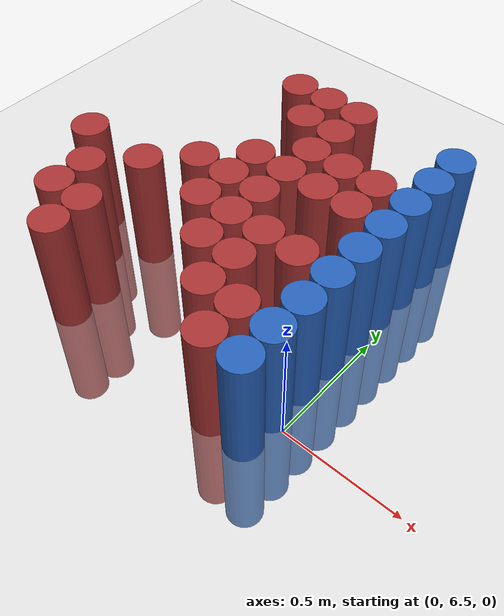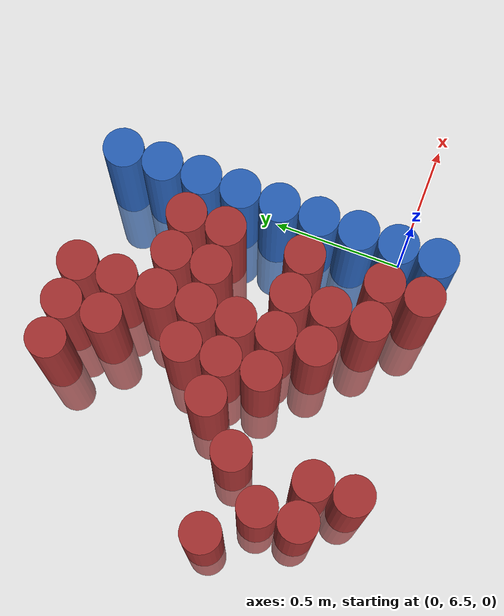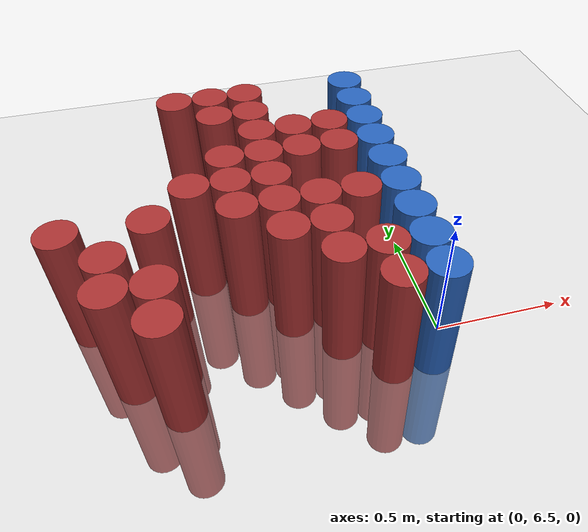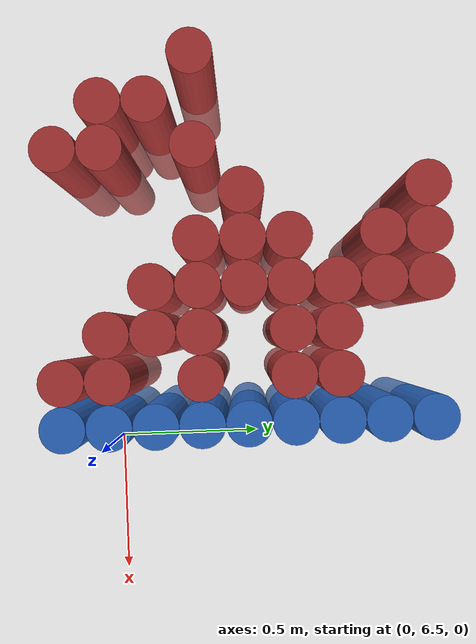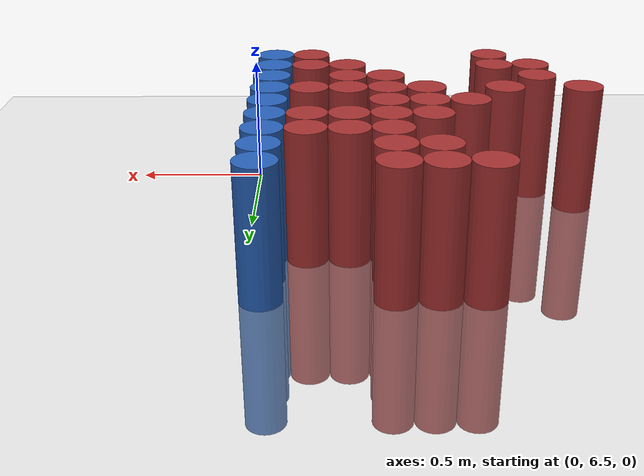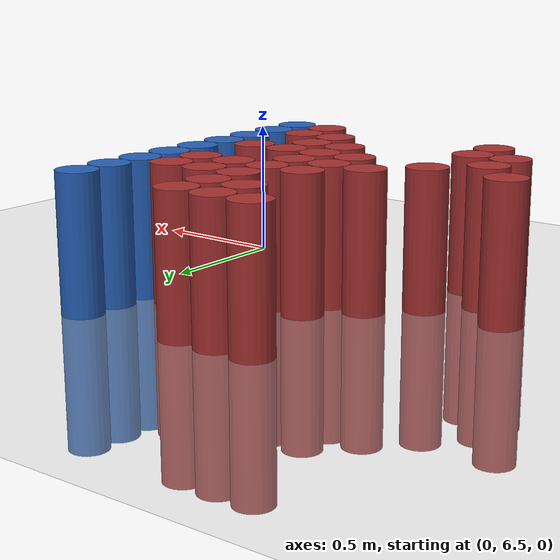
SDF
<sdf version="1.6">
 <world name="default">
  <model name="ground_plane">
   <static>1</static>
   <link name="link">
    <collision name="collision">
     <geometry><plane><normal>0 0 1</normal><size>100 100</size></plane></geometry>
     <surface><friction><ode><mu>100</mu><mu2>50</mu2></ode></friction></surface>
    </collision>
    <visual name="visual">
     <cast_shadows>0</cast_shadows>
     <geometry><plane><normal>0 0 1</normal><size>100 100</size></plane></geometry>
     <material>
      <script><uri>file://media/materials/scripts/gazebo.material</uri><name>Gazebo/Grey</name></script>
     </material>
    </visual>
   </link>
  </model>
  <model name="unit_cylinder_215">
   <static>1</static>
   <pose>-1.275000 6.825000 0.000000 0.000000 0.000000 0.000000</pose>
   <link name="link">
    <inertial>
     <mass>1</mass>
     <inertia><ixx>0.145833</ixx><ixy>0</ixy><ixz>0</ixz><iyy>0.145833</iyy><iyz>0</iyz><izz>0.125</izz></inertia>
    </inertial>
    <collision name="collision">
     <geometry><cylinder><radius>0.075000</radius><length>1</length></cylinder></geometry>
    </collision>
    <visual name="visual">
     <geometry><cylinder><radius>0.075000</radius><length>1</length></cylinder></geometry>
     <material>
      <ambient>0.648000 0.192000 0.192000 1</ambient>
      <diffuse>0.648000 0.192000 0.192000 1</diffuse>
     </material>
     <material>
      <script><name>Gazebo/Grey</name><uri>file://media/materials/scripts/gazebo.material</uri></script>
     </material>
    </visual>
    <sensor name="sensor_contact" type="contact"><contact><collision>collision</collision></contact></sensor>
   </link>
   <plugin filename="gz-sim-touchplugin-system" name="gz::sim::systems::TouchPlugin">
    <target>robot</target>
    <namespace>robot</namespace>
    <time>0.001</time>
    <enabled>true</enabled>
   </plugin>
  </model>
  <model name="unit_cylinder_216">
   <static>1</static>
   <pose>-1.125000 6.525000 0.000000 0.000000 0.000000 0.000000</pose>
   <link name="link">
    <inertial>
     <mass>1</mass>
     <inertia><ixx>0.145833</ixx><ixy>0</ixy><ixz>0</ixz><iyy>0.145833</iyy><iyz>0</iyz><izz>0.125</izz></inertia>
    </inertial>
    <collision name="collision">
     <geometry><cylinder><radius>0.075000</radius><length>1</length></cylinder></geometry>
    </collision>
    <visual name="visual">
     <geometry><cylinder><radius>0.075000</radius><length>1</length></cylinder></geometry>
     <material>
      <ambient>0.648000 0.192000 0.192000 1</ambient>
      <diffuse>0.648000 0.192000 0.192000 1</diffuse>
     </material>
     <material>
      <script><name>Gazebo/Grey</name><uri>file://media/materials/scripts/gazebo.material</uri></script>
     </material>
    </visual>
    <sensor name="sensor_contact" type="contact"><contact><collision>collision</collision></contact></sensor>
   </link>
   <plugin filename="gz-sim-touchplugin-system" name="gz::sim::systems::TouchPlugin">
    <target>robot</target>
    <namespace>robot</namespace>
    <time>0.001</time>
    <enabled>true</enabled>
   </plugin>
  </model>
  <model name="unit_cylinder_217">
   <static>1</static>
   <pose>-1.125000 6.675000 0.000000 0.000000 0.000000 0.000000</pose>
   <link name="link">
    <inertial>
     <mass>1</mass>
     <inertia><ixx>0.145833</ixx><ixy>0</ixy><ixz>0</ixz><iyy>0.145833</iyy><iyz>0</iyz><izz>0.125</izz></inertia>
    </inertial>
    <collision name="collision">
     <geometry><cylinder><radius>0.075000</radius><length>1</length></cylinder></geometry>
    </collision>
    <visual name="visual">
     <geometry><cylinder><radius>0.075000</radius><length>1</length></cylinder></geometry>
     <material>
      <ambient>0.648000 0.192000 0.192000 1</ambient>
      <diffuse>0.648000 0.192000 0.192000 1</diffuse>
     </material>
     <material>
      <script><name>Gazebo/Grey</name><uri>file://media/materials/scripts/gazebo.material</uri></script>
     </material>
    </visual>
    <sensor name="sensor_contact" type="contact"><contact><collision>collision</collision></contact></sensor>
   </link>
   <plugin filename="gz-sim-touchplugin-system" name="gz::sim::systems::TouchPlugin">
    <target>robot</target>
    <namespace>robot</namespace>
    <time>0.001</time>
    <enabled>true</enabled>
   </plugin>
  </model>
  <model name="unit_cylinder_219">
   <static>1</static>
   <pose>-0.975000 6.375000 0.000000 0.000000 0.000000 0.000000</pose>
   <link name="link">
    <inertial>
     <mass>1</mass>
     <inertia><ixx>0.145833</ixx><ixy>0</ixy><ixz>0</ixz><iyy>0.145833</iyy><iyz>0</iyz><izz>0.125</izz></inertia>
    </inertial>
    <collision name="collision">
     <geometry><cylinder><radius>0.075000</radius><length>1</length></cylinder></geometry>
    </collision>
    <visual name="visual">
     <geometry><cylinder><radius>0.075000</radius><length>1</length></cylinder></geometry>
     <material>
      <ambient>0.648000 0.192000 0.192000 1</ambient>
      <diffuse>0.648000 0.192000 0.192000 1</diffuse>
     </material>
     <material>
      <script><name>Gazebo/Grey</name><uri>file://media/materials/scripts/gazebo.material</uri></script>
     </material>
    </visual>
    <sensor name="sensor_contact" type="contact"><contact><collision>collision</collision></contact></sensor>
   </link>
   <plugin filename="gz-sim-touchplugin-system" name="gz::sim::systems::TouchPlugin">
    <target>robot</target>
    <namespace>robot</namespace>
    <time>0.001</time>
    <enabled>true</enabled>
   </plugin>
  </model>
  <model name="unit_cylinder_220">
   <static>1</static>
   <pose>-0.975000 6.525000 0.000000 0.000000 0.000000 0.000000</pose>
   <link name="link">
    <inertial>
     <mass>1</mass>
     <inertia><ixx>0.145833</ixx><ixy>0</ixy><ixz>0</ixz><iyy>0.145833</iyy><iyz>0</iyz><izz>0.125</izz></inertia>
    </inertial>
    <collision name="collision">
     <geometry><cylinder><radius>0.075000</radius><length>1</length></cylinder></geometry>
    </collision>
    <visual name="visual">
     <geometry><cylinder><radius>0.075000</radius><length>1</length></cylinder></geometry>
     <material>
      <ambient>0.648000 0.192000 0.192000 1</ambient>
      <diffuse>0.648000 0.192000 0.192000 1</diffuse>
     </material>
     <material>
      <script><name>Gazebo/Grey</name><uri>file://media/materials/scripts/gazebo.material</uri></script>
     </material>
    </visual>
    <sensor name="sensor_contact" type="contact"><contact><collision>collision</collision></contact></sensor>
   </link>
   <plugin filename="gz-sim-touchplugin-system" name="gz::sim::systems::TouchPlugin">
    <target>robot</target>
    <namespace>robot</namespace>
    <time>0.001</time>
    <enabled>true</enabled>
   </plugin>
  </model>
  <model name="unit_cylinder_221">
   <static>1</static>
   <pose>-0.975000 6.825000 0.000000 0.000000 0.000000 0.000000</pose>
   <link name="link">
    <inertial>
     <mass>1</mass>
     <inertia><ixx>0.145833</ixx><ixy>0</ixy><ixz>0</ixz><iyy>0.145833</iyy><iyz>0</iyz><izz>0.125</izz></inertia>
    </inertial>
    <collision name="collision">
     <geometry><cylinder><radius>0.075000</radius><length>1</length></cylinder></geometry>
    </collision>
    <visual name="visual">
     <geometry><cylinder><radius>0.075000</radius><length>1</length></cylinder></geometry>
     <material>
      <ambient>0.648000 0.192000 0.192000 1</ambient>
      <diffuse>0.648000 0.192000 0.192000 1</diffuse>
     </material>
     <material>
      <script><name>Gazebo/Grey</name><uri>file://media/materials/scripts/gazebo.material</uri></script>
     </material>
    </visual>
    <sensor name="sensor_contact" type="contact"><contact><collision>collision</collision></contact></sensor>
   </link>
   <plugin filename="gz-sim-touchplugin-system" name="gz::sim::systems::TouchPlugin">
    <target>robot</target>
    <namespace>robot</namespace>
    <time>0.001</time>
    <enabled>true</enabled>
   </plugin>
  </model>
  <model name="unit_cylinder_226">
   <static>1</static>
   <pose>-0.825000 6.975000 0.000000 0.000000 0.000000 0.000000</pose>
   <link name="link">
    <inertial>
     <mass>1</mass>
     <inertia><ixx>0.145833</ixx><ixy>0</ixy><ixz>0</ixz><iyy>0.145833</iyy><iyz>0</iyz><izz>0.125</izz></inertia>
    </inertial>
    <collision name="collision">
     <geometry><cylinder><radius>0.075000</radius><length>1</length></cylinder></geometry>
    </collision>
    <visual name="visual">
     <geometry><cylinder><radius>0.075000</radius><length>1</length></cylinder></geometry>
     <material>
      <ambient>0.648000 0.192000 0.192000 1</ambient>
      <diffuse>0.648000 0.192000 0.192000 1</diffuse>
     </material>
     <material>
      <script><name>Gazebo/Grey</name><uri>file://media/materials/scripts/gazebo.material</uri></script>
     </material>
    </visual>
    <sensor name="sensor_contact" type="contact"><contact><collision>collision</collision></contact></sensor>
   </link>
   <plugin filename="gz-sim-touchplugin-system" name="gz::sim::systems::TouchPlugin">
    <target>robot</target>
    <namespace>robot</namespace>
    <time>0.001</time>
    <enabled>true</enabled>
   </plugin>
  </model>
  <model name="unit_cylinder_227">
   <static>1</static>
   <pose>-0.825000 7.575000 0.000000 0.000000 0.000000 0.000000</pose>
   <link name="link">
    <inertial>
     <mass>1</mass>
     <inertia><ixx>0.145833</ixx><ixy>0</ixy><ixz>0</ixz><iyy>0.145833</iyy><iyz>0</iyz><izz>0.125</izz></inertia>
    </inertial>
    <collision name="collision">
     <geometry><cylinder><radius>0.075000</radius><length>1</length></cylinder></geometry>
    </collision>
    <visual name="visual">
     <geometry><cylinder><radius>0.075000</radius><length>1</length></cylinder></geometry>
     <material>
      <ambient>0.648000 0.192000 0.192000 1</ambient>
      <diffuse>0.648000 0.192000 0.192000 1</diffuse>
     </material>
     <material>
      <script><name>Gazebo/Grey</name><uri>file://media/materials/scripts/gazebo.material</uri></script>
     </material>
    </visual>
    <sensor name="sensor_contact" type="contact"><contact><collision>collision</collision></contact></sensor>
   </link>
   <plugin filename="gz-sim-touchplugin-system" name="gz::sim::systems::TouchPlugin">
    <target>robot</target>
    <namespace>robot</namespace>
    <time>0.001</time>
    <enabled>true</enabled>
   </plugin>
  </model>
  <model name="unit_cylinder_234">
   <static>1</static>
   <pose>-0.675000 6.825000 0.000000 0.000000 0.000000 0.000000</pose>
   <link name="link">
    <inertial>
     <mass>1</mass>
     <inertia><ixx>0.145833</ixx><ixy>0</ixy><ixz>0</ixz><iyy>0.145833</iyy><iyz>0</iyz><izz>0.125</izz></inertia>
    </inertial>
    <collision name="collision">
     <geometry><cylinder><radius>0.075000</radius><length>1</length></cylinder></geometry>
    </collision>
    <visual name="visual">
     <geometry><cylinder><radius>0.075000</radius><length>1</length></cylinder></geometry>
     <material>
      <ambient>0.648000 0.192000 0.192000 1</ambient>
      <diffuse>0.648000 0.192000 0.192000 1</diffuse>
     </material>
     <material>
      <script><name>Gazebo/Grey</name><uri>file://media/materials/scripts/gazebo.material</uri></script>
     </material>
    </visual>
    <sensor name="sensor_contact" type="contact"><contact><collision>collision</collision></contact></sensor>
   </link>
   <plugin filename="gz-sim-touchplugin-system" name="gz::sim::systems::TouchPlugin">
    <target>robot</target>
    <namespace>robot</namespace>
    <time>0.001</time>
    <enabled>true</enabled>
   </plugin>
  </model>
  <model name="unit_cylinder_235">
   <static>1</static>
   <pose>-0.675000 6.975000 0.000000 0.000000 0.000000 0.000000</pose>
   <link name="link">
    <inertial>
     <mass>1</mass>
     <inertia><ixx>0.145833</ixx><ixy>0</ixy><ixz>0</ixz><iyy>0.145833</iyy><iyz>0</iyz><izz>0.125</izz></inertia>
    </inertial>
    <collision name="collision">
     <geometry><cylinder><radius>0.075000</radius><length>1</length></cylinder></geometry>
    </collision>
    <visual name="visual">
     <geometry><cylinder><radius>0.075000</radius><length>1</length></cylinder></geometry>
     <material>
      <ambient>0.648000 0.192000 0.192000 1</ambient>
      <diffuse>0.648000 0.192000 0.192000 1</diffuse>
     </material>
     <material>
      <script><name>Gazebo/Grey</name><uri>file://media/materials/scripts/gazebo.material</uri></script>
     </material>
    </visual>
    <sensor name="sensor_contact" type="contact"><contact><collision>collision</collision></contact></sensor>
   </link>
   <plugin filename="gz-sim-touchplugin-system" name="gz::sim::systems::TouchPlugin">
    <target>robot</target>
    <namespace>robot</namespace>
    <time>0.001</time>
    <enabled>true</enabled>
   </plugin>
  </model>
  <model name="unit_cylinder_236">
   <static>1</static>
   <pose>-0.675000 7.125000 0.000000 0.000000 0.000000 0.000000</pose>
   <link name="link">
    <inertial>
     <mass>1</mass>
     <inertia><ixx>0.145833</ixx><ixy>0</ixy><ixz>0</ixz><iyy>0.145833</iyy><iyz>0</iyz><izz>0.125</izz></inertia>
    </inertial>
    <collision name="collision">
     <geometry><cylinder><radius>0.075000</radius><length>1</length></cylinder></geometry>
    </collision>
    <visual name="visual">
     <geometry><cylinder><radius>0.075000</radius><length>1</length></cylinder></geometry>
     <material>
      <ambient>0.648000 0.192000 0.192000 1</ambient>
      <diffuse>0.648000 0.192000 0.192000 1</diffuse>
     </material>
     <material>
      <script><name>Gazebo/Grey</name><uri>file://media/materials/scripts/gazebo.material</uri></script>
     </material>
    </visual>
    <sensor name="sensor_contact" type="contact"><contact><collision>collision</collision></contact></sensor>
   </link>
   <plugin filename="gz-sim-touchplugin-system" name="gz::sim::systems::TouchPlugin">
    <target>robot</target>
    <namespace>robot</namespace>
    <time>0.001</time>
    <enabled>true</enabled>
   </plugin>
  </model>
  <model name="unit_cylinder_237">
   <static>1</static>
   <pose>-0.675000 7.425000 0.000000 0.000000 0.000000 0.000000</pose>
   <link name="link">
    <inertial>
     <mass>1</mass>
     <inertia><ixx>0.145833</ixx><ixy>0</ixy><ixz>0</ixz><iyy>0.145833</iyy><iyz>0</iyz><izz>0.125</izz></inertia>
    </inertial>
    <collision name="collision">
     <geometry><cylinder><radius>0.075000</radius><length>1</length></cylinder></geometry>
    </collision>
    <visual name="visual">
     <geometry><cylinder><radius>0.075000</radius><length>1</length></cylinder></geometry>
     <material>
      <ambient>0.648000 0.192000 0.192000 1</ambient>
      <diffuse>0.648000 0.192000 0.192000 1</diffuse>
     </material>
     <material>
      <script><name>Gazebo/Grey</name><uri>file://media/materials/scripts/gazebo.material</uri></script>
     </material>
    </visual>
    <sensor name="sensor_contact" type="contact"><contact><collision>collision</collision></contact></sensor>
   </link>
   <plugin filename="gz-sim-touchplugin-system" name="gz::sim::systems::TouchPlugin">
    <target>robot</target>
    <namespace>robot</namespace>
    <time>0.001</time>
    <enabled>true</enabled>
   </plugin>
  </model>
  <model name="unit_cylinder_238">
   <static>1</static>
   <pose>-0.675000 7.575000 0.000000 0.000000 0.000000 0.000000</pose>
   <link name="link">
    <inertial>
     <mass>1</mass>
     <inertia><ixx>0.145833</ixx><ixy>0</ixy><ixz>0</ixz><iyy>0.145833</iyy><iyz>0</iyz><izz>0.125</izz></inertia>
    </inertial>
    <collision name="collision">
     <geometry><cylinder><radius>0.075000</radius><length>1</length></cylinder></geometry>
    </collision>
    <visual name="visual">
     <geometry><cylinder><radius>0.075000</radius><length>1</length></cylinder></geometry>
     <material>
      <ambient>0.648000 0.192000 0.192000 1</ambient>
      <diffuse>0.648000 0.192000 0.192000 1</diffuse>
     </material>
     <material>
      <script><name>Gazebo/Grey</name><uri>file://media/materials/scripts/gazebo.material</uri></script>
     </material>
    </visual>
    <sensor name="sensor_contact" type="contact"><contact><collision>collision</collision></contact></sensor>
   </link>
   <plugin filename="gz-sim-touchplugin-system" name="gz::sim::systems::TouchPlugin">
    <target>robot</target>
    <namespace>robot</namespace>
    <time>0.001</time>
    <enabled>true</enabled>
   </plugin>
  </model>
  <model name="unit_cylinder_241">
   <static>1</static>
   <pose>-0.525000 6.675000 0.000000 0.000000 0.000000 0.000000</pose>
   <link name="link">
    <inertial>
     <mass>1</mass>
     <inertia><ixx>0.145833</ixx><ixy>0</ixy><ixz>0</ixz><iyy>0.145833</iyy><iyz>0</iyz><izz>0.125</izz></inertia>
    </inertial>
    <collision name="collision">
     <geometry><cylinder><radius>0.075000</radius><length>1</length></cylinder></geometry>
    </collision>
    <visual name="visual">
     <geometry><cylinder><radius>0.075000</radius><length>1</length></cylinder></geometry>
     <material>
      <ambient>0.648000 0.192000 0.192000 1</ambient>
      <diffuse>0.648000 0.192000 0.192000 1</diffuse>
     </material>
     <material>
      <script><name>Gazebo/Grey</name><uri>file://media/materials/scripts/gazebo.material</uri></script>
     </material>
    </visual>
    <sensor name="sensor_contact" type="contact"><contact><collision>collision</collision></contact></sensor>
   </link>
   <plugin filename="gz-sim-touchplugin-system" name="gz::sim::systems::TouchPlugin">
    <target>robot</target>
    <namespace>robot</namespace>
    <time>0.001</time>
    <enabled>true</enabled>
   </plugin>
  </model>
  <model name="unit_cylinder_242">
   <static>1</static>
   <pose>-0.525000 6.825000 0.000000 0.000000 0.000000 0.000000</pose>
   <link name="link">
    <inertial>
     <mass>1</mass>
     <inertia><ixx>0.145833</ixx><ixy>0</ixy><ixz>0</ixz><iyy>0.145833</iyy><iyz>0</iyz><izz>0.125</izz></inertia>
    </inertial>
    <collision name="collision">
     <geometry><cylinder><radius>0.075000</radius><length>1</length></cylinder></geometry>
    </collision>
    <visual name="visual">
     <geometry><cylinder><radius>0.075000</radius><length>1</length></cylinder></geometry>
     <material>
      <ambient>0.648000 0.192000 0.192000 1</ambient>
      <diffuse>0.648000 0.192000 0.192000 1</diffuse>
     </material>
     <material>
      <script><name>Gazebo/Grey</name><uri>file://media/materials/scripts/gazebo.material</uri></script>
     </material>
    </visual>
    <sensor name="sensor_contact" type="contact"><contact><collision>collision</collision></contact></sensor>
   </link>
   <plugin filename="gz-sim-touchplugin-system" name="gz::sim::systems::TouchPlugin">
    <target>robot</target>
    <namespace>robot</namespace>
    <time>0.001</time>
    <enabled>true</enabled>
   </plugin>
  </model>
  <model name="unit_cylinder_243">
   <static>1</static>
   <pose>-0.525000 6.975000 0.000000 0.000000 0.000000 0.000000</pose>
   <link name="link">
    <inertial>
     <mass>1</mass>
     <inertia><ixx>0.145833</ixx><ixy>0</ixy><ixz>0</ixz><iyy>0.145833</iyy><iyz>0</iyz><izz>0.125</izz></inertia>
    </inertial>
    <collision name="collision">
     <geometry><cylinder><radius>0.075000</radius><length>1</length></cylinder></geometry>
    </collision>
    <visual name="visual">
     <geometry><cylinder><radius>0.075000</radius><length>1</length></cylinder></geometry>
     <material>
      <ambient>0.648000 0.192000 0.192000 1</ambient>
      <diffuse>0.648000 0.192000 0.192000 1</diffuse>
     </material>
     <material>
      <script><name>Gazebo/Grey</name><uri>file://media/materials/scripts/gazebo.material</uri></script>
     </material>
    </visual>
    <sensor name="sensor_contact" type="contact"><contact><collision>collision</collision></contact></sensor>
   </link>
   <plugin filename="gz-sim-touchplugin-system" name="gz::sim::systems::TouchPlugin">
    <target>robot</target>
    <namespace>robot</namespace>
    <time>0.001</time>
    <enabled>true</enabled>
   </plugin>
  </model>
  <model name="unit_cylinder_244">
   <static>1</static>
   <pose>-0.525000 7.125000 0.000000 0.000000 0.000000 0.000000</pose>
   <link name="link">
    <inertial>
     <mass>1</mass>
     <inertia><ixx>0.145833</ixx><ixy>0</ixy><ixz>0</ixz><iyy>0.145833</iyy><iyz>0</iyz><izz>0.125</izz></inertia>
    </inertial>
    <collision name="collision">
     <geometry><cylinder><radius>0.075000</radius><length>1</length></cylinder></geometry>
    </collision>
    <visual name="visual">
     <geometry><cylinder><radius>0.075000</radius><length>1</length></cylinder></geometry>
     <material>
      <ambient>0.648000 0.192000 0.192000 1</ambient>
      <diffuse>0.648000 0.192000 0.192000 1</diffuse>
     </material>
     <material>
      <script><name>Gazebo/Grey</name><uri>file://media/materials/scripts/gazebo.material</uri></script>
     </material>
    </visual>
    <sensor name="sensor_contact" type="contact"><contact><collision>collision</collision></contact></sensor>
   </link>
   <plugin filename="gz-sim-touchplugin-system" name="gz::sim::systems::TouchPlugin">
    <target>robot</target>
    <namespace>robot</namespace>
    <time>0.001</time>
    <enabled>true</enabled>
   </plugin>
  </model>
  <model name="unit_cylinder_245">
   <static>1</static>
   <pose>-0.525000 7.275000 0.000000 0.000000 0.000000 0.000000</pose>
   <link name="link">
    <inertial>
     <mass>1</mass>
     <inertia><ixx>0.145833</ixx><ixy>0</ixy><ixz>0</ixz><iyy>0.145833</iyy><iyz>0</iyz><izz>0.125</izz></inertia>
    </inertial>
    <collision name="collision">
     <geometry><cylinder><radius>0.075000</radius><length>1</length></cylinder></geometry>
    </collision>
    <visual name="visual">
     <geometry><cylinder><radius>0.075000</radius><length>1</length></cylinder></geometry>
     <material>
      <ambient>0.648000 0.192000 0.192000 1</ambient>
      <diffuse>0.648000 0.192000 0.192000 1</diffuse>
     </material>
     <material>
      <script><name>Gazebo/Grey</name><uri>file://media/materials/scripts/gazebo.material</uri></script>
     </material>
    </visual>
    <sensor name="sensor_contact" type="contact"><contact><collision>collision</collision></contact></sensor>
   </link>
   <plugin filename="gz-sim-touchplugin-system" name="gz::sim::systems::TouchPlugin">
    <target>robot</target>
    <namespace>robot</namespace>
    <time>0.001</time>
    <enabled>true</enabled>
   </plugin>
  </model>
  <model name="unit_cylinder_246">
   <static>1</static>
   <pose>-0.525000 7.425000 0.000000 0.000000 0.000000 0.000000</pose>
   <link name="link">
    <inertial>
     <mass>1</mass>
     <inertia><ixx>0.145833</ixx><ixy>0</ixy><ixz>0</ixz><iyy>0.145833</iyy><iyz>0</iyz><izz>0.125</izz></inertia>
    </inertial>
    <collision name="collision">
     <geometry><cylinder><radius>0.075000</radius><length>1</length></cylinder></geometry>
    </collision>
    <visual name="visual">
     <geometry><cylinder><radius>0.075000</radius><length>1</length></cylinder></geometry>
     <material>
      <ambient>0.648000 0.192000 0.192000 1</ambient>
      <diffuse>0.648000 0.192000 0.192000 1</diffuse>
     </material>
     <material>
      <script><name>Gazebo/Grey</name><uri>file://media/materials/scripts/gazebo.material</uri></script>
     </material>
    </visual>
    <sensor name="sensor_contact" type="contact"><contact><collision>collision</collision></contact></sensor>
   </link>
   <plugin filename="gz-sim-touchplugin-system" name="gz::sim::systems::TouchPlugin">
    <target>robot</target>
    <namespace>robot</namespace>
    <time>0.001</time>
    <enabled>true</enabled>
   </plugin>
  </model>
  <model name="unit_cylinder_247">
   <static>1</static>
   <pose>-0.525000 7.575000 0.000000 0.000000 0.000000 0.000000</pose>
   <link name="link">
    <inertial>
     <mass>1</mass>
     <inertia><ixx>0.145833</ixx><ixy>0</ixy><ixz>0</ixz><iyy>0.145833</iyy><iyz>0</iyz><izz>0.125</izz></inertia>
    </inertial>
    <collision name="collision">
     <geometry><cylinder><radius>0.075000</radius><length>1</length></cylinder></geometry>
    </collision>
    <visual name="visual">
     <geometry><cylinder><radius>0.075000</radius><length>1</length></cylinder></geometry>
     <material>
      <ambient>0.648000 0.192000 0.192000 1</ambient>
      <diffuse>0.648000 0.192000 0.192000 1</diffuse>
     </material>
     <material>
      <script><name>Gazebo/Grey</name><uri>file://media/materials/scripts/gazebo.material</uri></script>
     </material>
    </visual>
    <sensor name="sensor_contact" type="contact"><contact><collision>collision</collision></contact></sensor>
   </link>
   <plugin filename="gz-sim-touchplugin-system" name="gz::sim::systems::TouchPlugin">
    <target>robot</target>
    <namespace>robot</namespace>
    <time>0.001</time>
    <enabled>true</enabled>
   </plugin>
  </model>
  <model name="unit_cylinder_251">
   <static>1</static>
   <pose>-0.375000 6.525000 0.000000 0.000000 0.000000 0.000000</pose>
   <link name="link">
    <inertial>
     <mass>1</mass>
     <inertia><ixx>0.145833</ixx><ixy>0</ixy><ixz>0</ixz><iyy>0.145833</iyy><iyz>0</iyz><izz>0.125</izz></inertia>
    </inertial>
    <collision name="collision">
     <geometry><cylinder><radius>0.075000</radius><length>1</length></cylinder></geometry>
    </collision>
    <visual name="visual">
     <geometry><cylinder><radius>0.075000</radius><length>1</length></cylinder></geometry>
     <material>
      <ambient>0.648000 0.192000 0.192000 1</ambient>
      <diffuse>0.648000 0.192000 0.192000 1</diffuse>
     </material>
     <material>
      <script><name>Gazebo/Grey</name><uri>file://media/materials/scripts/gazebo.material</uri></script>
     </material>
    </visual>
    <sensor name="sensor_contact" type="contact"><contact><collision>collision</collision></contact></sensor>
   </link>
   <plugin filename="gz-sim-touchplugin-system" name="gz::sim::systems::TouchPlugin">
    <target>robot</target>
    <namespace>robot</namespace>
    <time>0.001</time>
    <enabled>true</enabled>
   </plugin>
  </model>
  <model name="unit_cylinder_252">
   <static>1</static>
   <pose>-0.375000 6.675000 0.000000 0.000000 0.000000 0.000000</pose>
   <link name="link">
    <inertial>
     <mass>1</mass>
     <inertia><ixx>0.145833</ixx><ixy>0</ixy><ixz>0</ixz><iyy>0.145833</iyy><iyz>0</iyz><izz>0.125</izz></inertia>
    </inertial>
    <collision name="collision">
     <geometry><cylinder><radius>0.075000</radius><length>1</length></cylinder></geometry>
    </collision>
    <visual name="visual">
     <geometry><cylinder><radius>0.075000</radius><length>1</length></cylinder></geometry>
     <material>
      <ambient>0.648000 0.192000 0.192000 1</ambient>
      <diffuse>0.648000 0.192000 0.192000 1</diffuse>
     </material>
     <material>
      <script><name>Gazebo/Grey</name><uri>file://media/materials/scripts/gazebo.material</uri></script>
     </material>
    </visual>
    <sensor name="sensor_contact" type="contact"><contact><collision>collision</collision></contact></sensor>
   </link>
   <plugin filename="gz-sim-touchplugin-system" name="gz::sim::systems::TouchPlugin">
    <target>robot</target>
    <namespace>robot</namespace>
    <time>0.001</time>
    <enabled>true</enabled>
   </plugin>
  </model>
  <model name="unit_cylinder_253">
   <static>1</static>
   <pose>-0.375000 6.825000 0.000000 0.000000 0.000000 0.000000</pose>
   <link name="link">
    <inertial>
     <mass>1</mass>
     <inertia><ixx>0.145833</ixx><ixy>0</ixy><ixz>0</ixz><iyy>0.145833</iyy><iyz>0</iyz><izz>0.125</izz></inertia>
    </inertial>
    <collision name="collision">
     <geometry><cylinder><radius>0.075000</radius><length>1</length></cylinder></geometry>
    </collision>
    <visual name="visual">
     <geometry><cylinder><radius>0.075000</radius><length>1</length></cylinder></geometry>
     <material>
      <ambient>0.648000 0.192000 0.192000 1</ambient>
      <diffuse>0.648000 0.192000 0.192000 1</diffuse>
     </material>
     <material>
      <script><name>Gazebo/Grey</name><uri>file://media/materials/scripts/gazebo.material</uri></script>
     </material>
    </visual>
    <sensor name="sensor_contact" type="contact"><contact><collision>collision</collision></contact></sensor>
   </link>
   <plugin filename="gz-sim-touchplugin-system" name="gz::sim::systems::TouchPlugin">
    <target>robot</target>
    <namespace>robot</namespace>
    <time>0.001</time>
    <enabled>true</enabled>
   </plugin>
  </model>
  <model name="unit_cylinder_254">
   <static>1</static>
   <pose>-0.375000 7.125000 0.000000 0.000000 0.000000 0.000000</pose>
   <link name="link">
    <inertial>
     <mass>1</mass>
     <inertia><ixx>0.145833</ixx><ixy>0</ixy><ixz>0</ixz><iyy>0.145833</iyy><iyz>0</iyz><izz>0.125</izz></inertia>
    </inertial>
    <collision name="collision">
     <geometry><cylinder><radius>0.075000</radius><length>1</length></cylinder></geometry>
    </collision>
    <visual name="visual">
     <geometry><cylinder><radius>0.075000</radius><length>1</length></cylinder></geometry>
     <material>
      <ambient>0.648000 0.192000 0.192000 1</ambient>
      <diffuse>0.648000 0.192000 0.192000 1</diffuse>
     </material>
     <material>
      <script><name>Gazebo/Grey</name><uri>file://media/materials/scripts/gazebo.material</uri></script>
     </material>
    </visual>
    <sensor name="sensor_contact" type="contact"><contact><collision>collision</collision></contact></sensor>
   </link>
   <plugin filename="gz-sim-touchplugin-system" name="gz::sim::systems::TouchPlugin">
    <target>robot</target>
    <namespace>robot</namespace>
    <time>0.001</time>
    <enabled>true</enabled>
   </plugin>
  </model>
  <model name="unit_cylinder_255">
   <static>1</static>
   <pose>-0.375000 7.275000 0.000000 0.000000 0.000000 0.000000</pose>
   <link name="link">
    <inertial>
     <mass>1</mass>
     <inertia><ixx>0.145833</ixx><ixy>0</ixy><ixz>0</ixz><iyy>0.145833</iyy><iyz>0</iyz><izz>0.125</izz></inertia>
    </inertial>
    <collision name="collision">
     <geometry><cylinder><radius>0.075000</radius><length>1</length></cylinder></geometry>
    </collision>
    <visual name="visual">
     <geometry><cylinder><radius>0.075000</radius><length>1</length></cylinder></geometry>
     <material>
      <ambient>0.648000 0.192000 0.192000 1</ambient>
      <diffuse>0.648000 0.192000 0.192000 1</diffuse>
     </material>
     <material>
      <script><name>Gazebo/Grey</name><uri>file://media/materials/scripts/gazebo.material</uri></script>
     </material>
    </visual>
    <sensor name="sensor_contact" type="contact"><contact><collision>collision</collision></contact></sensor>
   </link>
   <plugin filename="gz-sim-touchplugin-system" name="gz::sim::systems::TouchPlugin">
    <target>robot</target>
    <namespace>robot</namespace>
    <time>0.001</time>
    <enabled>true</enabled>
   </plugin>
  </model>
  <model name="unit_cylinder_264">
   <static>1</static>
   <pose>-0.225000 6.375000 0.000000 0.000000 0.000000 0.000000</pose>
   <link name="link">
    <inertial>
     <mass>1</mass>
     <inertia><ixx>0.145833</ixx><ixy>0</ixy><ixz>0</ixz><iyy>0.145833</iyy><iyz>0</iyz><izz>0.125</izz></inertia>
    </inertial>
    <collision name="collision">
     <geometry><cylinder><radius>0.075000</radius><length>1</length></cylinder></geometry>
    </collision>
    <visual name="visual">
     <geometry><cylinder><radius>0.075000</radius><length>1</length></cylinder></geometry>
     <material>
      <ambient>0.648000 0.192000 0.192000 1</ambient>
      <diffuse>0.648000 0.192000 0.192000 1</diffuse>
     </material>
     <material>
      <script><name>Gazebo/Grey</name><uri>file://media/materials/scripts/gazebo.material</uri></script>
     </material>
    </visual>
    <sensor name="sensor_contact" type="contact"><contact><collision>collision</collision></contact></sensor>
   </link>
   <plugin filename="gz-sim-touchplugin-system" name="gz::sim::systems::TouchPlugin">
    <target>robot</target>
    <namespace>robot</namespace>
    <time>0.001</time>
    <enabled>true</enabled>
   </plugin>
  </model>
  <model name="unit_cylinder_265">
   <static>1</static>
   <pose>-0.225000 6.525000 0.000000 0.000000 0.000000 0.000000</pose>
   <link name="link">
    <inertial>
     <mass>1</mass>
     <inertia><ixx>0.145833</ixx><ixy>0</ixy><ixz>0</ixz><iyy>0.145833</iyy><iyz>0</iyz><izz>0.125</izz></inertia>
    </inertial>
    <collision name="collision">
     <geometry><cylinder><radius>0.075000</radius><length>1</length></cylinder></geometry>
    </collision>
    <visual name="visual">
     <geometry><cylinder><radius>0.075000</radius><length>1</length></cylinder></geometry>
     <material>
      <ambient>0.648000 0.192000 0.192000 1</ambient>
      <diffuse>0.648000 0.192000 0.192000 1</diffuse>
     </material>
     <material>
      <script><name>Gazebo/Grey</name><uri>file://media/materials/scripts/gazebo.material</uri></script>
     </material>
    </visual>
    <sensor name="sensor_contact" type="contact"><contact><collision>collision</collision></contact></sensor>
   </link>
   <plugin filename="gz-sim-touchplugin-system" name="gz::sim::systems::TouchPlugin">
    <target>robot</target>
    <namespace>robot</namespace>
    <time>0.001</time>
    <enabled>true</enabled>
   </plugin>
  </model>
  <model name="unit_cylinder_266">
   <static>1</static>
   <pose>-0.225000 6.825000 0.000000 0.000000 0.000000 0.000000</pose>
   <link name="link">
    <inertial>
     <mass>1</mass>
     <inertia><ixx>0.145833</ixx><ixy>0</ixy><ixz>0</ixz><iyy>0.145833</iyy><iyz>0</iyz><izz>0.125</izz></inertia>
    </inertial>
    <collision name="collision">
     <geometry><cylinder><radius>0.075000</radius><length>1</length></cylinder></geometry>
    </collision>
    <visual name="visual">
     <geometry><cylinder><radius>0.075000</radius><length>1</length></cylinder></geometry>
     <material>
      <ambient>0.648000 0.192000 0.192000 1</ambient>
      <diffuse>0.648000 0.192000 0.192000 1</diffuse>
     </material>
     <material>
      <script><name>Gazebo/Grey</name><uri>file://media/materials/scripts/gazebo.material</uri></script>
     </material>
    </visual>
    <sensor name="sensor_contact" type="contact"><contact><collision>collision</collision></contact></sensor>
   </link>
   <plugin filename="gz-sim-touchplugin-system" name="gz::sim::systems::TouchPlugin">
    <target>robot</target>
    <namespace>robot</namespace>
    <time>0.001</time>
    <enabled>true</enabled>
   </plugin>
  </model>
  <model name="unit_cylinder_267">
   <static>1</static>
   <pose>-0.225000 7.125000 0.000000 0.000000 0.000000 0.000000</pose>
   <link name="link">
    <inertial>
     <mass>1</mass>
     <inertia><ixx>0.145833</ixx><ixy>0</ixy><ixz>0</ixz><iyy>0.145833</iyy><iyz>0</iyz><izz>0.125</izz></inertia>
    </inertial>
    <collision name="collision">
     <geometry><cylinder><radius>0.075000</radius><length>1</length></cylinder></geometry>
    </collision>
    <visual name="visual">
     <geometry><cylinder><radius>0.075000</radius><length>1</length></cylinder></geometry>
     <material>
      <ambient>0.648000 0.192000 0.192000 1</ambient>
      <diffuse>0.648000 0.192000 0.192000 1</diffuse>
     </material>
     <material>
      <script><name>Gazebo/Grey</name><uri>file://media/materials/scripts/gazebo.material</uri></script>
     </material>
    </visual>
    <sensor name="sensor_contact" type="contact"><contact><collision>collision</collision></contact></sensor>
   </link>
   <plugin filename="gz-sim-touchplugin-system" name="gz::sim::systems::TouchPlugin">
    <target>robot</target>
    <namespace>robot</namespace>
    <time>0.001</time>
    <enabled>true</enabled>
   </plugin>
  </model>
  <model name="unit_cylinder_268">
   <static>1</static>
   <pose>-0.225000 7.275000 0.000000 0.000000 0.000000 0.000000</pose>
   <link name="link">
    <inertial>
     <mass>1</mass>
     <inertia><ixx>0.145833</ixx><ixy>0</ixy><ixz>0</ixz><iyy>0.145833</iyy><iyz>0</iyz><izz>0.125</izz></inertia>
    </inertial>
    <collision name="collision">
     <geometry><cylinder><radius>0.075000</radius><length>1</length></cylinder></geometry>
    </collision>
    <visual name="visual">
     <geometry><cylinder><radius>0.075000</radius><length>1</length></cylinder></geometry>
     <material>
      <ambient>0.648000 0.192000 0.192000 1</ambient>
      <diffuse>0.648000 0.192000 0.192000 1</diffuse>
     </material>
     <material>
      <script><name>Gazebo/Grey</name><uri>file://media/materials/scripts/gazebo.material</uri></script>
     </material>
    </visual>
    <sensor name="sensor_contact" type="contact"><contact><collision>collision</collision></contact></sensor>
   </link>
   <plugin filename="gz-sim-touchplugin-system" name="gz::sim::systems::TouchPlugin">
    <target>robot</target>
    <namespace>robot</namespace>
    <time>0.001</time>
    <enabled>true</enabled>
   </plugin>
  </model>
  <model name="unit_cylinder_288">
   <static>1</static>
   <pose>-0.075000 6.375000 0.000000 0.000000 0.000000 0.000000</pose>
   <link name="link">
    <inertial>
     <mass>1</mass>
     <inertia><ixx>0.145833</ixx><ixy>0</ixy><ixz>0</ixz><iyy>0.145833</iyy><iyz>0</iyz><izz>0.125</izz></inertia>
    </inertial>
    <collision name="collision">
     <geometry><cylinder><radius>0.075000</radius><length>1</length></cylinder></geometry>
    </collision>
    <visual name="visual">
     <geometry><cylinder><radius>0.075000</radius><length>1</length></cylinder></geometry>
     <material>
      <ambient>0.152000 0.379000 0.720000 1</ambient>
      <diffuse>0.152000 0.379000 0.720000 1</diffuse>
     </material>
     <material>
      <script><name>Gazebo/Grey</name><uri>file://media/materials/scripts/gazebo.material</uri></script>
     </material>
    </visual>
    <sensor name="sensor_contact" type="contact"><contact><collision>collision</collision></contact></sensor>
   </link>
   <plugin filename="gz-sim-touchplugin-system" name="gz::sim::systems::TouchPlugin">
    <target>robot</target>
    <namespace>robot</namespace>
    <time>0.001</time>
    <enabled>true</enabled>
   </plugin>
  </model>
  <model name="unit_cylinder_289">
   <static>1</static>
   <pose>-0.075000 6.525000 0.000000 0.000000 0.000000 0.000000</pose>
   <link name="link">
    <inertial>
     <mass>1</mass>
     <inertia><ixx>0.145833</ixx><ixy>0</ixy><ixz>0</ixz><iyy>0.145833</iyy><iyz>0</iyz><izz>0.125</izz></inertia>
    </inertial>
    <collision name="collision">
     <geometry><cylinder><radius>0.075000</radius><length>1</length></cylinder></geometry>
    </collision>
    <visual name="visual">
     <geometry><cylinder><radius>0.075000</radius><length>1</length></cylinder></geometry>
     <material>
      <ambient>0.152000 0.379000 0.720000 1</ambient>
      <diffuse>0.152000 0.379000 0.720000 1</diffuse>
     </material>
     <material>
      <script><name>Gazebo/Grey</name><uri>file://media/materials/scripts/gazebo.material</uri></script>
     </material>
    </visual>
    <sensor name="sensor_contact" type="contact"><contact><collision>collision</collision></contact></sensor>
   </link>
   <plugin filename="gz-sim-touchplugin-system" name="gz::sim::systems::TouchPlugin">
    <target>robot</target>
    <namespace>robot</namespace>
    <time>0.001</time>
    <enabled>true</enabled>
   </plugin>
  </model>
  <model name="unit_cylinder_290">
   <static>1</static>
   <pose>-0.075000 6.675000 0.000000 0.000000 0.000000 0.000000</pose>
   <link name="link">
    <inertial>
     <mass>1</mass>
     <inertia><ixx>0.145833</ixx><ixy>0</ixy><ixz>0</ixz><iyy>0.145833</iyy><iyz>0</iyz><izz>0.125</izz></inertia>
    </inertial>
    <collision name="collision">
     <geometry><cylinder><radius>0.075000</radius><length>1</length></cylinder></geometry>
    </collision>
    <visual name="visual">
     <geometry><cylinder><radius>0.075000</radius><length>1</length></cylinder></geometry>
     <material>
      <ambient>0.152000 0.379000 0.720000 1</ambient>
      <diffuse>0.152000 0.379000 0.720000 1</diffuse>
     </material>
     <material>
      <script><name>Gazebo/Grey</name><uri>file://media/materials/scripts/gazebo.material</uri></script>
     </material>
    </visual>
    <sensor name="sensor_contact" type="contact"><contact><collision>collision</collision></contact></sensor>
   </link>
   <plugin filename="gz-sim-touchplugin-system" name="gz::sim::systems::TouchPlugin">
    <target>robot</target>
    <namespace>robot</namespace>
    <time>0.001</time>
    <enabled>true</enabled>
   </plugin>
  </model>
  <model name="unit_cylinder_291">
   <static>1</static>
   <pose>-0.075000 6.825000 0.000000 0.000000 0.000000 0.000000</pose>
   <link name="link">
    <inertial>
     <mass>1</mass>
     <inertia><ixx>0.145833</ixx><ixy>0</ixy><ixz>0</ixz><iyy>0.145833</iyy><iyz>0</iyz><izz>0.125</izz></inertia>
    </inertial>
    <collision name="collision">
     <geometry><cylinder><radius>0.075000</radius><length>1</length></cylinder></geometry>
    </collision>
    <visual name="visual">
     <geometry><cylinder><radius>0.075000</radius><length>1</length></cylinder></geometry>
     <material>
      <ambient>0.152000 0.379000 0.720000 1</ambient>
      <diffuse>0.152000 0.379000 0.720000 1</diffuse>
     </material>
     <material>
      <script><name>Gazebo/Grey</name><uri>file://media/materials/scripts/gazebo.material</uri></script>
     </material>
    </visual>
    <sensor name="sensor_contact" type="contact"><contact><collision>collision</collision></contact></sensor>
   </link>
   <plugin filename="gz-sim-touchplugin-system" name="gz::sim::systems::TouchPlugin">
    <target>robot</target>
    <namespace>robot</namespace>
    <time>0.001</time>
    <enabled>true</enabled>
   </plugin>
  </model>
  <model name="unit_cylinder_292">
   <static>1</static>
   <pose>-0.075000 6.975000 0.000000 0.000000 0.000000 0.000000</pose>
   <link name="link">
    <inertial>
     <mass>1</mass>
     <inertia><ixx>0.145833</ixx><ixy>0</ixy><ixz>0</ixz><iyy>0.145833</iyy><iyz>0</iyz><izz>0.125</izz></inertia>
    </inertial>
    <collision name="collision">
     <geometry><cylinder><radius>0.075000</radius><length>1</length></cylinder></geometry>
    </collision>
    <visual name="visual">
     <geometry><cylinder><radius>0.075000</radius><length>1</length></cylinder></geometry>
     <material>
      <ambient>0.152000 0.379000 0.720000 1</ambient>
      <diffuse>0.152000 0.379000 0.720000 1</diffuse>
     </material>
     <material>
      <script><name>Gazebo/Grey</name><uri>file://media/materials/scripts/gazebo.material</uri></script>
     </material>
    </visual>
    <sensor name="sensor_contact" type="contact"><contact><collision>collision</collision></contact></sensor>
   </link>
   <plugin filename="gz-sim-touchplugin-system" name="gz::sim::systems::TouchPlugin">
    <target>robot</target>
    <namespace>robot</namespace>
    <time>0.001</time>
    <enabled>true</enabled>
   </plugin>
  </model>
  <model name="unit_cylinder_293">
   <static>1</static>
   <pose>-0.075000 7.125000 0.000000 0.000000 0.000000 0.000000</pose>
   <link name="link">
    <inertial>
     <mass>1</mass>
     <inertia><ixx>0.145833</ixx><ixy>0</ixy><ixz>0</ixz><iyy>0.145833</iyy><iyz>0</iyz><izz>0.125</izz></inertia>
    </inertial>
    <collision name="collision">
     <geometry><cylinder><radius>0.075000</radius><length>1</length></cylinder></geometry>
    </collision>
    <visual name="visual">
     <geometry><cylinder><radius>0.075000</radius><length>1</length></cylinder></geometry>
     <material>
      <ambient>0.152000 0.379000 0.720000 1</ambient>
      <diffuse>0.152000 0.379000 0.720000 1</diffuse>
     </material>
     <material>
      <script><name>Gazebo/Grey</name><uri>file://media/materials/scripts/gazebo.material</uri></script>
     </material>
    </visual>
    <sensor name="sensor_contact" type="contact"><contact><collision>collision</collision></contact></sensor>
   </link>
   <plugin filename="gz-sim-touchplugin-system" name="gz::sim::systems::TouchPlugin">
    <target>robot</target>
    <namespace>robot</namespace>
    <time>0.001</time>
    <enabled>true</enabled>
   </plugin>
  </model>
  <model name="unit_cylinder_294">
   <static>1</static>
   <pose>-0.075000 7.275000 0.000000 0.000000 0.000000 0.000000</pose>
   <link name="link">
    <inertial>
     <mass>1</mass>
     <inertia><ixx>0.145833</ixx><ixy>0</ixy><ixz>0</ixz><iyy>0.145833</iyy><iyz>0</iyz><izz>0.125</izz></inertia>
    </inertial>
    <collision name="collision">
     <geometry><cylinder><radius>0.075000</radius><length>1</length></cylinder></geometry>
    </collision>
    <visual name="visual">
     <geometry><cylinder><radius>0.075000</radius><length>1</length></cylinder></geometry>
     <material>
      <ambient>0.152000 0.379000 0.720000 1</ambient>
      <diffuse>0.152000 0.379000 0.720000 1</diffuse>
     </material>
     <material>
      <script><name>Gazebo/Grey</name><uri>file://media/materials/scripts/gazebo.material</uri></script>
     </material>
    </visual>
    <sensor name="sensor_contact" type="contact"><contact><collision>collision</collision></contact></sensor>
   </link>
   <plugin filename="gz-sim-touchplugin-system" name="gz::sim::systems::TouchPlugin">
    <target>robot</target>
    <namespace>robot</namespace>
    <time>0.001</time>
    <enabled>true</enabled>
   </plugin>
  </model>
  <model name="unit_cylinder_295">
   <static>1</static>
   <pose>-0.075000 7.425000 0.000000 0.000000 0.000000 0.000000</pose>
   <link name="link">
    <inertial>
     <mass>1</mass>
     <inertia><ixx>0.145833</ixx><ixy>0</ixy><ixz>0</ixz><iyy>0.145833</iyy><iyz>0</iyz><izz>0.125</izz></inertia>
    </inertial>
    <collision name="collision">
     <geometry><cylinder><radius>0.075000</radius><length>1</length></cylinder></geometry>
    </collision>
    <visual name="visual">
     <geometry><cylinder><radius>0.075000</radius><length>1</length></cylinder></geometry>
     <material>
      <ambient>0.152000 0.379000 0.720000 1</ambient>
      <diffuse>0.152000 0.379000 0.720000 1</diffuse>
     </material>
     <material>
      <script><name>Gazebo/Grey</name><uri>file://media/materials/scripts/gazebo.material</uri></script>
     </material>
    </visual>
    <sensor name="sensor_contact" type="contact"><contact><collision>collision</collision></contact></sensor>
   </link>
   <plugin filename="gz-sim-touchplugin-system" name="gz::sim::systems::TouchPlugin">
    <target>robot</target>
    <namespace>robot</namespace>
    <time>0.001</time>
    <enabled>true</enabled>
   </plugin>
  </model>
  <model name="unit_cylinder_296">
   <static>1</static>
   <pose>-0.075000 7.575000 0.000000 0.000000 0.000000 0.000000</pose>
   <link name="link">
    <inertial>
     <mass>1</mass>
     <inertia><ixx>0.145833</ixx><ixy>0</ixy><ixz>0</ixz><iyy>0.145833</iyy><iyz>0</iyz><izz>0.125</izz></inertia>
    </inertial>
    <collision name="collision">
     <geometry><cylinder><radius>0.075000</radius><length>1</length></cylinder></geometry>
    </collision>
    <visual name="visual">
     <geometry><cylinder><radius>0.075000</radius><length>1</length></cylinder></geometry>
     <material>
      <ambient>0.152000 0.379000 0.720000 1</ambient>
      <diffuse>0.152000 0.379000 0.720000 1</diffuse>
     </material>
     <material>
      <script><name>Gazebo/Grey</name><uri>file://media/materials/scripts/gazebo.material</uri></script>
     </material>
    </visual>
    <sensor name="sensor_contact" type="contact"><contact><collision>collision</collision></contact></sensor>
   </link>
   <plugin filename="gz-sim-touchplugin-system" name="gz::sim::systems::TouchPlugin">
    <target>robot</target>
    <namespace>robot</namespace>
    <time>0.001</time>
    <enabled>true</enabled>
   </plugin>
  </model>
 </world>
</sdf>
